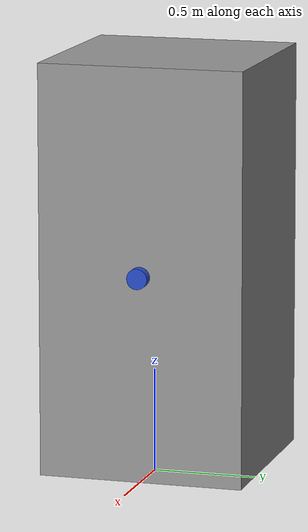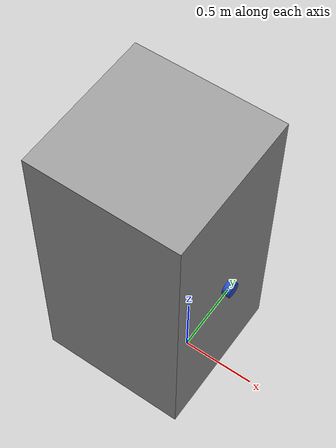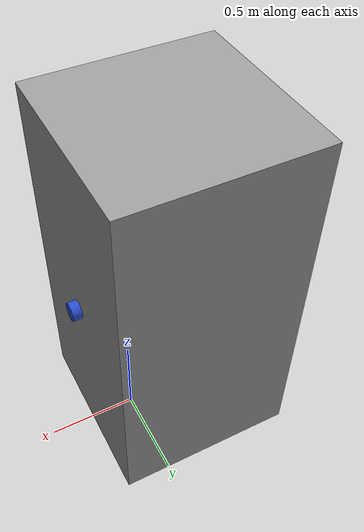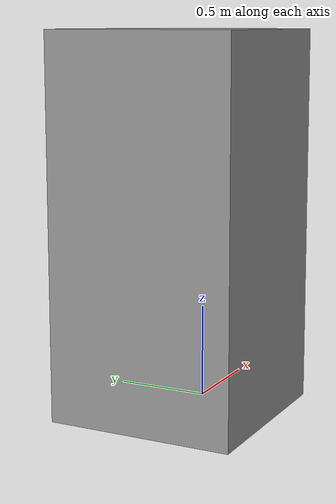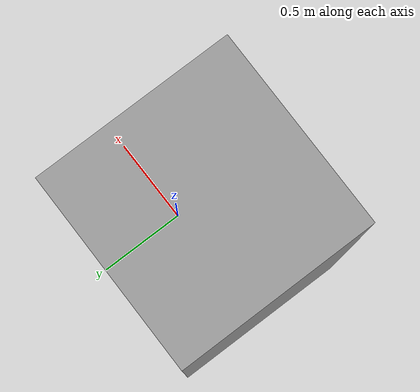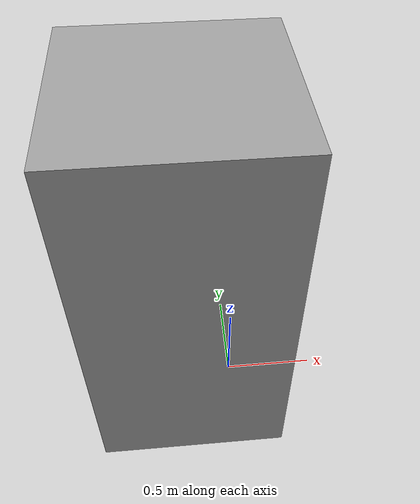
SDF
<?xml version='1.0'?>
<sdf version='1.6'>
  <model name='button_panel'>
    <link name='base'>
      <pose frame=''>-0.25 0 1 0 -0 0</pose>
      <inertial>
        <mass>50</mass>
        <inertia>
          <ixx>0.166667</ixx>
          <ixy>0</ixy>
          <ixz>0</ixz>
          <iyy>0.166667</iyy>
          <iyz>0</iyz>
          <izz>0.166667</izz>
        </inertia>
      </inertial>
      <visual name='visual'>
        <geometry>
          <box>
            <size>1 1 2</size>
          </box>
        </geometry>
        <material>
          <script>
            <uri>file://media/materials/scripts/gazebo.material</uri>
            <name>Gazebo/Grey</name>
          </script>
        </material>
      </visual>
      <collision name='collision'>
        <geometry>
          <box>
            <size>1 1 2</size>
          </box>
        </geometry>
      </collision>
    </link>
    <link name='button'>
      <pose frame=''>0.25 0 1 0 1.5707 0</pose>
      <inertial>
        <mass>1</mass>
        <inertia>
          <ixx>0.145833</ixx>
          <ixy>0</ixy>
          <ixz>0</ixz>
          <iyy>0.145833</iyy>
          <iyz>0</iyz>
          <izz>0.125</izz>
        </inertia>
      </inertial>
      <visual name='visual'>
        <geometry>
          <cylinder>
            <radius>0.05</radius>
            <length>0.1</length>
          </cylinder>
        </geometry>
        <material>
          <script>
            <uri>file://media/materials/scripts/gazebo.material</uri>
            <name>Gazebo/Blue</name>
          </script>
        </material>
      </visual>
      <collision name='collision'>
        <geometry>
          <cylinder>
            <radius>0.05</radius>
            <length>0.1</length>
          </cylinder>
        </geometry>
      </collision>
    </link>
    <joint name='button_joint' type='prismatic'>
      <parent>base</parent>
      <child>button</child>
      <axis>
        <xyz>1 0 0</xyz>
        <use_parent_model_frame>1</use_parent_model_frame>
        <limit>
          <lower>-0.045</lower>
          <upper>0.0</upper>
        </limit>
        <dynamics>
          <spring_reference>0.0</spring_reference>
          <spring_stiffness>100</spring_stiffness>
        </dynamics>
      </axis>
    </joint>
    <plugin name="button_plugin" filename="libButtonPanel.so">
      <pressed_position_lower>-0.05</pressed_position_lower>
      <pressed_position_upper>-0.025</pressed_position_upper>
      <joint>button_joint</joint>
    </plugin>
  </model>
</sdf>
